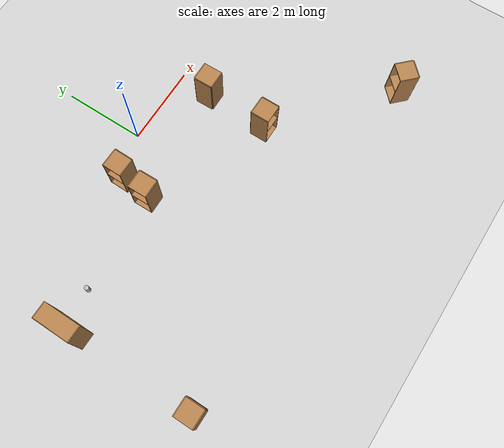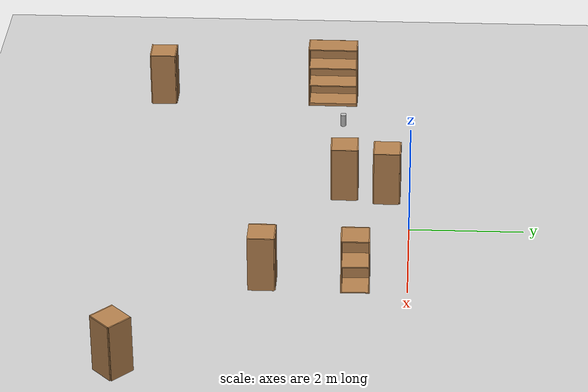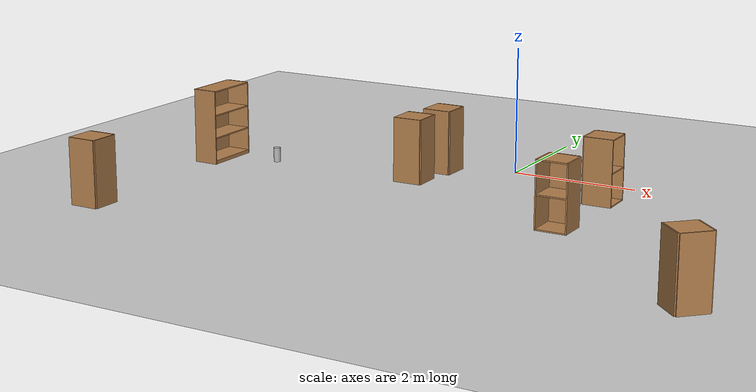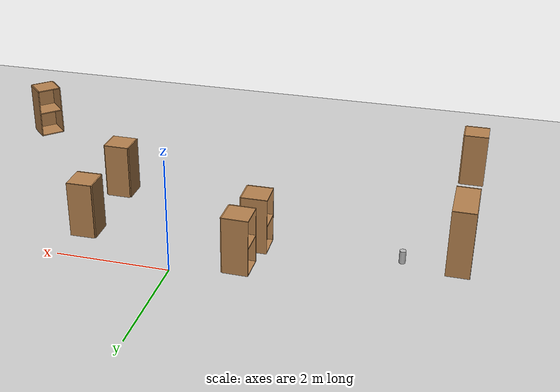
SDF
<sdf version="1.6">
 <world name="default">
  <model name="ground_plane">
   <static>1</static>
   <link name="link">
    <collision name="collision">
     <geometry><plane><normal>0 0 1</normal><size>100 100</size></plane></geometry>
     <surface><friction><ode><mu>100</mu><mu2>50</mu2></ode></friction></surface>
    </collision>
    <visual name="visual">
     <cast_shadows>0</cast_shadows>
     <geometry><plane><normal>0 0 1</normal><size>100 100</size></plane></geometry>
     <material>
      <script><uri>file://media/materials/scripts/gazebo.material</uri><name>Gazebo/Grey</name></script>
     </material>
    </visual>
   </link>
  </model>
  <model name="cabinet">
   <static>1</static>
   <link name="cabinet_bottom_plate">
    <inertial>
     <pose>0 0 -1 0 -0 0</pose>
     <inertia><ixx>2.05</ixx><ixy>0</ixy><ixz>0</ixz><iyy>2.05</iyy><iyz>0</iyz><izz>2.05</izz></inertia>
     <mass>25</mass>
    </inertial>
    <collision name="cabinet_bottom_plate_geom">
     <pose>0 0 0.01 0 -0 0</pose>
     <geometry><box><size>0.45 0.45 0.02</size></box></geometry>
    </collision>
    <visual name="cabinet_bottom_plate_geom_visual">
     <pose>0 0 0.01 0 -0 0</pose>
     <geometry><box><size>0.45 0.45 0.02</size></box></geometry>
     <material>
      <script><uri>file://media/materials/scripts/gazebo.material</uri><name>Gazebo/Wood</name></script>
     </material>
    </visual>
    <collision name="cabinet_bottom_plate_geom_cabinet_back_plate">
     <pose>0.235 0 0.51 0 -0 0</pose>
     <geometry><box><size>0.02 0.45 1.02</size></box></geometry>
    </collision>
    <visual name="cabinet_bottom_plate_geom_cabinet_back_plate_visual">
     <pose>0.235 0 0.51 0 -0 0</pose>
     <geometry><box><size>0.02 0.45 1.02</size></box></geometry>
     <material>
      <script><uri>file://media/materials/scripts/gazebo.material</uri><name>Gazebo/Wood</name></script>
     </material>
    </visual>
    <collision name="cabinet_bottom_plate_geom_cabinet_left_plate">
     <pose>0 0.235 0.51 0 -0 0</pose>
     <geometry><box><size>0.45 0.02 1.02</size></box></geometry>
    </collision>
    <visual name="cabinet_bottom_plate_geom_cabinet_left_plate_visual">
     <pose>0 0.235 0.51 0 -0 0</pose>
     <geometry><box><size>0.45 0.02 1.02</size></box></geometry>
     <material>
      <script><uri>file://media/materials/scripts/gazebo.material</uri><name>Gazebo/Wood</name></script>
     </material>
    </visual>
    <collision name="cabinet_bottom_plate_geom_cabinet_middle_plate">
     <pose>0 0 0.51 0 -0 0</pose>
     <geometry><box><size>0.45 0.45 0.02</size></box></geometry>
    </collision>
    <visual name="cabinet_bottom_plate_geom_cabinet_middle_plate_visual">
     <pose>0 0 0.51 0 -0 0</pose>
     <geometry><box><size>0.45 0.45 0.02</size></box></geometry>
     <material>
      <script><uri>file://media/materials/scripts/gazebo.material</uri><name>Gazebo/Wood</name></script>
     </material>
    </visual>
    <collision name="cabinet_bottom_plate_geom_cabinet_right_plate">
     <pose>0 -0.235 0.51 0 -0 0</pose>
     <geometry><box><size>0.45 0.02 1.02</size></box></geometry>
    </collision>
    <visual name="cabinet_bottom_plate_geom_cabinet_right_plate_visual">
     <pose>0 -0.235 0.51 0 -0 0</pose>
     <geometry><box><size>0.45 0.02 1.02</size></box></geometry>
     <material>
      <script><uri>file://media/materials/scripts/gazebo.material</uri><name>Gazebo/Wood</name></script>
     </material>
    </visual>
    <collision name="cabinet_bottom_plate_geom_cabinet_top_plate">
     <pose>0 0 1.01 0 -0 0</pose>
     <geometry><box><size>0.45 0.45 0.02</size></box></geometry>
    </collision>
    <visual name="cabinet_bottom_plate_geom_cabinet_top_plate_visual">
     <pose>0 0 1.01 0 -0 0</pose>
     <geometry><box><size>0.45 0.45 0.02</size></box></geometry>
     <material>
      <script><uri>file://media/materials/scripts/gazebo.material</uri><name>Gazebo/Wood</name></script>
     </material>
    </visual>
   </link>
   <pose>-4.59525 -4.71212 0 0 -0 0</pose>
  </model>
  <model name="bookshelf">
   <static>1</static>
   <link name="link">
    <inertial><mass>1</mass></inertial>
    <collision name="back">
     <pose>0 0.005 0.6 0 -0 0</pose>
     <geometry><box><size>0.9 0.01 1.2</size></box></geometry>
    </collision>
    <visual name="visual1">
     <pose>0 0.005 0.6 0 -0 0</pose>
     <geometry><box><size>0.9 0.01 1.2</size></box></geometry>
     <material>
      <script><uri>file://media/materials/scripts/gazebo.material</uri><name>Gazebo/Wood</name></script>
     </material>
    </visual>
    <collision name="left_side">
     <pose>0.45 -0.195 0.6 0 -0 0</pose>
     <geometry><box><size>0.02 0.4 1.2</size></box></geometry>
    </collision>
    <visual name="visual2">
     <pose>0.45 -0.195 0.6 0 -0 0</pose>
     <geometry><box><size>0.02 0.4 1.2</size></box></geometry>
     <material>
      <script><uri>file://media/materials/scripts/gazebo.material</uri><name>Gazebo/Wood</name></script>
     </material>
    </visual>
    <collision name="right_side">
     <pose>-0.45 -0.195 0.6 0 -0 0</pose>
     <geometry><box><size>0.02 0.4 1.2</size></box></geometry>
    </collision>
    <visual name="visual3">
     <pose>-0.45 -0.195 0.6 0 -0 0</pose>
     <geometry><box><size>0.02 0.4 1.2</size></box></geometry>
     <material>
      <script><uri>file://media/materials/scripts/gazebo.material</uri><name>Gazebo/Wood</name></script>
     </material>
    </visual>
    <collision name="bottom">
     <pose>0 -0.195 0.03 0 -0 0</pose>
     <geometry><box><size>0.88 0.4 0.06</size></box></geometry>
    </collision>
    <visual name="visual4">
     <pose>0 -0.195 0.03 0 -0 0</pose>
     <geometry><box><size>0.88 0.4 0.06</size></box></geometry>
     <material>
      <script><uri>file://media/materials/scripts/gazebo.material</uri><name>Gazebo/Wood</name></script>
     </material>
    </visual>
    <collision name="top">
     <pose>0 -0.195 1.19 0 -0 0</pose>
     <geometry><box><size>0.88 0.4 0.02</size></box></geometry>
    </collision>
    <visual name="visual5">
     <pose>0 -0.195 1.19 0 -0 0</pose>
     <geometry><box><size>0.88 0.4 0.02</size></box></geometry>
     <material>
      <script><uri>file://media/materials/scripts/gazebo.material</uri><name>Gazebo/Wood</name></script>
     </material>
    </visual>
    <collision name="low_shelf">
     <pose>0 -0.195 0.43 0 -0 0</pose>
     <geometry><box><size>0.88 0.4 0.02</size></box></geometry>
    </collision>
    <visual name="visual6">
     <pose>0 -0.195 0.43 0 -0 0</pose>
     <geometry><box><size>0.88 0.4 0.02</size></box></geometry>
     <material>
      <script><uri>file://media/materials/scripts/gazebo.material</uri><name>Gazebo/Wood</name></script>
     </material>
    </visual>
    <collision name="high_shelf">
     <pose>0 -0.195 0.8 0 -0 0</pose>
     <geometry><box><size>0.88 0.4 0.02</size></box></geometry>
    </collision>
    <visual name="visual7">
     <pose>0 -0.195 0.8 0 -0 0</pose>
     <geometry><box><size>0.88 0.4 0.02</size></box></geometry>
     <material>
      <script><uri>file://media/materials/scripts/gazebo.material</uri><name>Gazebo/Wood</name></script>
     </material>
    </visual>
   </link>
   <pose>-4.78302 -1.50325 0 0 -0 1.56537</pose>
  </model>
  <model name="cabinet_0_clone">
   <static>1</static>
   <link name="cabinet_bottom_plate">
    <inertial>
     <pose>0 0 -1 0 -0 0</pose>
     <inertia><ixx>2.05</ixx><ixy>0</ixy><ixz>0</ixz><iyy>2.05</iyy><iyz>0</iyz><izz>2.05</izz></inertia>
     <mass>25</mass>
    </inertial>
    <collision name="cabinet_bottom_plate_geom">
     <pose>0 0 0.01 0 -0 0</pose>
     <geometry><box><size>0.45 0.45 0.02</size></box></geometry>
    </collision>
    <visual name="cabinet_bottom_plate_geom_visual">
     <pose>0 0 0.01 0 -0 0</pose>
     <geometry><box><size>0.45 0.45 0.02</size></box></geometry>
     <material>
      <script><uri>file://media/materials/scripts/gazebo.material</uri><name>Gazebo/Wood</name></script>
     </material>
    </visual>
    <collision name="cabinet_bottom_plate_geom_cabinet_back_plate">
     <pose>0.235 0 0.51 0 -0 0</pose>
     <geometry><box><size>0.02 0.45 1.02</size></box></geometry>
    </collision>
    <visual name="cabinet_bottom_plate_geom_cabinet_back_plate_visual">
     <pose>0.235 0 0.51 0 -0 0</pose>
     <geometry><box><size>0.02 0.45 1.02</size></box></geometry>
     <material>
      <script><uri>file://media/materials/scripts/gazebo.material</uri><name>Gazebo/Wood</name></script>
     </material>
    </visual>
    <collision name="cabinet_bottom_plate_geom_cabinet_left_plate">
     <pose>0 0.235 0.51 0 -0 0</pose>
     <geometry><box><size>0.45 0.02 1.02</size></box></geometry>
    </collision>
    <visual name="cabinet_bottom_plate_geom_cabinet_left_plate_visual">
     <pose>0 0.235 0.51 0 -0 0</pose>
     <geometry><box><size>0.45 0.02 1.02</size></box></geometry>
     <material>
      <script><uri>file://media/materials/scripts/gazebo.material</uri><name>Gazebo/Wood</name></script>
     </material>
    </visual>
    <collision name="cabinet_bottom_plate_geom_cabinet_middle_plate">
     <pose>0 0 0.51 0 -0 0</pose>
     <geometry><box><size>0.45 0.45 0.02</size></box></geometry>
    </collision>
    <visual name="cabinet_bottom_plate_geom_cabinet_middle_plate_visual">
     <pose>0 0 0.51 0 -0 0</pose>
     <geometry><box><size>0.45 0.45 0.02</size></box></geometry>
     <material>
      <script><uri>file://media/materials/scripts/gazebo.material</uri><name>Gazebo/Wood</name></script>
     </material>
    </visual>
    <collision name="cabinet_bottom_plate_geom_cabinet_right_plate">
     <pose>0 -0.235 0.51 0 -0 0</pose>
     <geometry><box><size>0.45 0.02 1.02</size></box></geometry>
    </collision>
    <visual name="cabinet_bottom_plate_geom_cabinet_right_plate_visual">
     <pose>0 -0.235 0.51 0 -0 0</pose>
     <geometry><box><size>0.45 0.02 1.02</size></box></geometry>
     <material>
      <script><uri>file://media/materials/scripts/gazebo.material</uri><name>Gazebo/Wood</name></script>
     </material>
    </visual>
    <collision name="cabinet_bottom_plate_geom_cabinet_top_plate">
     <pose>0 0 1.01 0 -0 0</pose>
     <geometry><box><size>0.45 0.45 0.02</size></box></geometry>
    </collision>
    <visual name="cabinet_bottom_plate_geom_cabinet_top_plate_visual">
     <pose>0 0 1.01 0 -0 0</pose>
     <geometry><box><size>0.45 0.45 0.02</size></box></geometry>
     <material>
      <script><uri>file://media/materials/scripts/gazebo.material</uri><name>Gazebo/Wood</name></script>
     </material>
    </visual>
   </link>
   <pose>-1.19045 -1.16918 0 0 -0 0.015356</pose>
  </model>
  <model name="cabinet_0_clone_clone_2">
   <static>1</static>
   <link name="cabinet_bottom_plate">
    <inertial>
     <pose>0 0 -1 0 -0 0</pose>
     <inertia><ixx>2.05</ixx><ixy>0</ixy><ixz>0</ixz><iyy>2.05</iyy><iyz>0</iyz><izz>2.05</izz></inertia>
     <mass>25</mass>
    </inertial>
    <collision name="cabinet_bottom_plate_geom">
     <pose>0 0 0.01 0 -0 0</pose>
     <geometry><box><size>0.45 0.45 0.02</size></box></geometry>
    </collision>
    <visual name="cabinet_bottom_plate_geom_visual">
     <pose>0 0 0.01 0 -0 0</pose>
     <geometry><box><size>0.45 0.45 0.02</size></box></geometry>
     <material>
      <script><uri>file://media/materials/scripts/gazebo.material</uri><name>Gazebo/Wood</name></script>
     </material>
    </visual>
    <collision name="cabinet_bottom_plate_geom_cabinet_back_plate">
     <pose>0.235 0 0.51 0 -0 0</pose>
     <geometry><box><size>0.02 0.45 1.02</size></box></geometry>
    </collision>
    <visual name="cabinet_bottom_plate_geom_cabinet_back_plate_visual">
     <pose>0.235 0 0.51 0 -0 0</pose>
     <geometry><box><size>0.02 0.45 1.02</size></box></geometry>
     <material>
      <script><uri>file://media/materials/scripts/gazebo.material</uri><name>Gazebo/Wood</name></script>
     </material>
    </visual>
    <collision name="cabinet_bottom_plate_geom_cabinet_left_plate">
     <pose>0 0.235 0.51 0 -0 0</pose>
     <geometry><box><size>0.45 0.02 1.02</size></box></geometry>
    </collision>
    <visual name="cabinet_bottom_plate_geom_cabinet_left_plate_visual">
     <pose>0 0.235 0.51 0 -0 0</pose>
     <geometry><box><size>0.45 0.02 1.02</size></box></geometry>
     <material>
      <script><uri>file://media/materials/scripts/gazebo.material</uri><name>Gazebo/Wood</name></script>
     </material>
    </visual>
    <collision name="cabinet_bottom_plate_geom_cabinet_middle_plate">
     <pose>0 0 0.51 0 -0 0</pose>
     <geometry><box><size>0.45 0.45 0.02</size></box></geometry>
    </collision>
    <visual name="cabinet_bottom_plate_geom_cabinet_middle_plate_visual">
     <pose>0 0 0.51 0 -0 0</pose>
     <geometry><box><size>0.45 0.45 0.02</size></box></geometry>
     <material>
      <script><uri>file://media/materials/scripts/gazebo.material</uri><name>Gazebo/Wood</name></script>
     </material>
    </visual>
    <collision name="cabinet_bottom_plate_geom_cabinet_right_plate">
     <pose>0 -0.235 0.51 0 -0 0</pose>
     <geometry><box><size>0.45 0.02 1.02</size></box></geometry>
    </collision>
    <visual name="cabinet_bottom_plate_geom_cabinet_right_plate_visual">
     <pose>0 -0.235 0.51 0 -0 0</pose>
     <geometry><box><size>0.45 0.02 1.02</size></box></geometry>
     <material>
      <script><uri>file://media/materials/scripts/gazebo.material</uri><name>Gazebo/Wood</name></script>
     </material>
    </visual>
    <collision name="cabinet_bottom_plate_geom_cabinet_top_plate">
     <pose>0 0 1.01 0 -0 0</pose>
     <geometry><box><size>0.45 0.45 0.02</size></box></geometry>
    </collision>
    <visual name="cabinet_bottom_plate_geom_cabinet_top_plate_visual">
     <pose>0 0 1.01 0 -0 0</pose>
     <geometry><box><size>0.45 0.45 0.02</size></box></geometry>
     <material>
      <script><uri>file://media/materials/scripts/gazebo.material</uri><name>Gazebo/Wood</name></script>
     </material>
    </visual>
   </link>
   <pose>-1.08054 -0.412522 0 0 0 -0.011045</pose>
  </model>
  <model name="cabinet_0_clone_clone_10">
   <static>1</static>
   <link name="cabinet_bottom_plate">
    <inertial>
     <pose>0 0 -1 0 -0 0</pose>
     <inertia><ixx>2.05</ixx><ixy>0</ixy><ixz>0</ixz><iyy>2.05</iyy><iyz>0</iyz><izz>2.05</izz></inertia>
     <mass>25</mass>
    </inertial>
    <collision name="cabinet_bottom_plate_geom">
     <pose>0 0 0.01 0 -0 0</pose>
     <geometry><box><size>0.45 0.45 0.02</size></box></geometry>
    </collision>
    <visual name="cabinet_bottom_plate_geom_visual">
     <pose>0 0 0.01 0 -0 0</pose>
     <geometry><box><size>0.45 0.45 0.02</size></box></geometry>
     <material>
      <script><uri>file://media/materials/scripts/gazebo.material</uri><name>Gazebo/Wood</name></script>
     </material>
    </visual>
    <collision name="cabinet_bottom_plate_geom_cabinet_back_plate">
     <pose>0.235 0 0.51 0 -0 0</pose>
     <geometry><box><size>0.02 0.45 1.02</size></box></geometry>
    </collision>
    <visual name="cabinet_bottom_plate_geom_cabinet_back_plate_visual">
     <pose>0.235 0 0.51 0 -0 0</pose>
     <geometry><box><size>0.02 0.45 1.02</size></box></geometry>
     <material>
      <script><uri>file://media/materials/scripts/gazebo.material</uri><name>Gazebo/Wood</name></script>
     </material>
    </visual>
    <collision name="cabinet_bottom_plate_geom_cabinet_left_plate">
     <pose>0 0.235 0.51 0 -0 0</pose>
     <geometry><box><size>0.45 0.02 1.02</size></box></geometry>
    </collision>
    <visual name="cabinet_bottom_plate_geom_cabinet_left_plate_visual">
     <pose>0 0.235 0.51 0 -0 0</pose>
     <geometry><box><size>0.45 0.02 1.02</size></box></geometry>
     <material>
      <script><uri>file://media/materials/scripts/gazebo.material</uri><name>Gazebo/Wood</name></script>
     </material>
    </visual>
    <collision name="cabinet_bottom_plate_geom_cabinet_middle_plate">
     <pose>0 0 0.51 0 -0 0</pose>
     <geometry><box><size>0.45 0.45 0.02</size></box></geometry>
    </collision>
    <visual name="cabinet_bottom_plate_geom_cabinet_middle_plate_visual">
     <pose>0 0 0.51 0 -0 0</pose>
     <geometry><box><size>0.45 0.45 0.02</size></box></geometry>
     <material>
      <script><uri>file://media/materials/scripts/gazebo.material</uri><name>Gazebo/Wood</name></script>
     </material>
    </visual>
    <collision name="cabinet_bottom_plate_geom_cabinet_right_plate">
     <pose>0 -0.235 0.51 0 -0 0</pose>
     <geometry><box><size>0.45 0.02 1.02</size></box></geometry>
    </collision>
    <visual name="cabinet_bottom_plate_geom_cabinet_right_plate_visual">
     <pose>0 -0.235 0.51 0 -0 0</pose>
     <geometry><box><size>0.45 0.02 1.02</size></box></geometry>
     <material>
      <script><uri>file://media/materials/scripts/gazebo.material</uri><name>Gazebo/Wood</name></script>
     </material>
    </visual>
    <collision name="cabinet_bottom_plate_geom_cabinet_top_plate">
     <pose>0 0 1.01 0 -0 0</pose>
     <geometry><box><size>0.45 0.45 0.02</size></box></geometry>
    </collision>
    <visual name="cabinet_bottom_plate_geom_cabinet_top_plate_visual">
     <pose>0 0 1.01 0 -0 0</pose>
     <geometry><box><size>0.45 0.45 0.02</size></box></geometry>
     <material>
      <script><uri>file://media/materials/scripts/gazebo.material</uri><name>Gazebo/Wood</name></script>
     </material>
    </visual>
   </link>
   <pose>1.82763 -0.880699 0 0 0 -3.12805</pose>
  </model>
  <model name="cabinet_0_clone_clone_11">
   <static>1</static>
   <link name="cabinet_bottom_plate">
    <inertial>
     <pose>0 0 -1 0 -0 0</pose>
     <inertia><ixx>2.05</ixx><ixy>0</ixy><ixz>0</ixz><iyy>2.05</iyy><iyz>0</iyz><izz>2.05</izz></inertia>
     <mass>25</mass>
    </inertial>
    <collision name="cabinet_bottom_plate_geom">
     <pose>0 0 0.01 0 -0 0</pose>
     <geometry><box><size>0.45 0.45 0.02</size></box></geometry>
    </collision>
    <visual name="cabinet_bottom_plate_geom_visual">
     <pose>0 0 0.01 0 -0 0</pose>
     <geometry><box><size>0.45 0.45 0.02</size></box></geometry>
     <material>
      <script><uri>file://media/materials/scripts/gazebo.material</uri><name>Gazebo/Wood</name></script>
     </material>
    </visual>
    <collision name="cabinet_bottom_plate_geom_cabinet_back_plate">
     <pose>0.235 0 0.51 0 -0 0</pose>
     <geometry><box><size>0.02 0.45 1.02</size></box></geometry>
    </collision>
    <visual name="cabinet_bottom_plate_geom_cabinet_back_plate_visual">
     <pose>0.235 0 0.51 0 -0 0</pose>
     <geometry><box><size>0.02 0.45 1.02</size></box></geometry>
     <material>
      <script><uri>file://media/materials/scripts/gazebo.material</uri><name>Gazebo/Wood</name></script>
     </material>
    </visual>
    <collision name="cabinet_bottom_plate_geom_cabinet_left_plate">
     <pose>0 0.235 0.51 0 -0 0</pose>
     <geometry><box><size>0.45 0.02 1.02</size></box></geometry>
    </collision>
    <visual name="cabinet_bottom_plate_geom_cabinet_left_plate_visual">
     <pose>0 0.235 0.51 0 -0 0</pose>
     <geometry><box><size>0.45 0.02 1.02</size></box></geometry>
     <material>
      <script><uri>file://media/materials/scripts/gazebo.material</uri><name>Gazebo/Wood</name></script>
     </material>
    </visual>
    <collision name="cabinet_bottom_plate_geom_cabinet_middle_plate">
     <pose>0 0 0.51 0 -0 0</pose>
     <geometry><box><size>0.45 0.45 0.02</size></box></geometry>
    </collision>
    <visual name="cabinet_bottom_plate_geom_cabinet_middle_plate_visual">
     <pose>0 0 0.51 0 -0 0</pose>
     <geometry><box><size>0.45 0.45 0.02</size></box></geometry>
     <material>
      <script><uri>file://media/materials/scripts/gazebo.material</uri><name>Gazebo/Wood</name></script>
     </material>
    </visual>
    <collision name="cabinet_bottom_plate_geom_cabinet_right_plate">
     <pose>0 -0.235 0.51 0 -0 0</pose>
     <geometry><box><size>0.45 0.02 1.02</size></box></geometry>
    </collision>
    <visual name="cabinet_bottom_plate_geom_cabinet_right_plate_visual">
     <pose>0 -0.235 0.51 0 -0 0</pose>
     <geometry><box><size>0.45 0.02 1.02</size></box></geometry>
     <material>
      <script><uri>file://media/materials/scripts/gazebo.material</uri><name>Gazebo/Wood</name></script>
     </material>
    </visual>
    <collision name="cabinet_bottom_plate_geom_cabinet_top_plate">
     <pose>0 0 1.01 0 -0 0</pose>
     <geometry><box><size>0.45 0.45 0.02</size></box></geometry>
    </collision>
    <visual name="cabinet_bottom_plate_geom_cabinet_top_plate_visual">
     <pose>0 0 1.01 0 -0 0</pose>
     <geometry><box><size>0.45 0.45 0.02</size></box></geometry>
     <material>
      <script><uri>file://media/materials/scripts/gazebo.material</uri><name>Gazebo/Wood</name></script>
     </material>
    </visual>
   </link>
   <pose>1.79366 -2.46179 0 0 -0 1.568</pose>
  </model>
  <model name="cabinet_0_clone_clone_12">
   <static>1</static>
   <link name="cabinet_bottom_plate">
    <inertial>
     <pose>0 0 -1 0 -0 0</pose>
     <inertia><ixx>2.05</ixx><ixy>0</ixy><ixz>0</ixz><iyy>2.05</iyy><iyz>0</iyz><izz>2.05</izz></inertia>
     <mass>25</mass>
    </inertial>
    <collision name="cabinet_bottom_plate_geom">
     <pose>0 0 0.01 0 -0 0</pose>
     <geometry><box><size>0.45 0.45 0.02</size></box></geometry>
    </collision>
    <visual name="cabinet_bottom_plate_geom_visual">
     <pose>0 0 0.01 0 -0 0</pose>
     <geometry><box><size>0.45 0.45 0.02</size></box></geometry>
     <material>
      <script><uri>file://media/materials/scripts/gazebo.material</uri><name>Gazebo/Wood</name></script>
     </material>
    </visual>
    <collision name="cabinet_bottom_plate_geom_cabinet_back_plate">
     <pose>0.235 0 0.51 0 -0 0</pose>
     <geometry><box><size>0.02 0.45 1.02</size></box></geometry>
    </collision>
    <visual name="cabinet_bottom_plate_geom_cabinet_back_plate_visual">
     <pose>0.235 0 0.51 0 -0 0</pose>
     <geometry><box><size>0.02 0.45 1.02</size></box></geometry>
     <material>
      <script><uri>file://media/materials/scripts/gazebo.material</uri><name>Gazebo/Wood</name></script>
     </material>
    </visual>
    <collision name="cabinet_bottom_plate_geom_cabinet_left_plate">
     <pose>0 0.235 0.51 0 -0 0</pose>
     <geometry><box><size>0.45 0.02 1.02</size></box></geometry>
    </collision>
    <visual name="cabinet_bottom_plate_geom_cabinet_left_plate_visual">
     <pose>0 0.235 0.51 0 -0 0</pose>
     <geometry><box><size>0.45 0.02 1.02</size></box></geometry>
     <material>
      <script><uri>file://media/materials/scripts/gazebo.material</uri><name>Gazebo/Wood</name></script>
     </material>
    </visual>
    <collision name="cabinet_bottom_plate_geom_cabinet_middle_plate">
     <pose>0 0 0.51 0 -0 0</pose>
     <geometry><box><size>0.45 0.45 0.02</size></box></geometry>
    </collision>
    <visual name="cabinet_bottom_plate_geom_cabinet_middle_plate_visual">
     <pose>0 0 0.51 0 -0 0</pose>
     <geometry><box><size>0.45 0.45 0.02</size></box></geometry>
     <material>
      <script><uri>file://media/materials/scripts/gazebo.material</uri><name>Gazebo/Wood</name></script>
     </material>
    </visual>
    <collision name="cabinet_bottom_plate_geom_cabinet_right_plate">
     <pose>0 -0.235 0.51 0 -0 0</pose>
     <geometry><box><size>0.45 0.02 1.02</size></box></geometry>
    </collision>
    <visual name="cabinet_bottom_plate_geom_cabinet_right_plate_visual">
     <pose>0 -0.235 0.51 0 -0 0</pose>
     <geometry><box><size>0.45 0.02 1.02</size></box></geometry>
     <material>
      <script><uri>file://media/materials/scripts/gazebo.material</uri><name>Gazebo/Wood</name></script>
     </material>
    </visual>
    <collision name="cabinet_bottom_plate_geom_cabinet_top_plate">
     <pose>0 0 1.01 0 -0 0</pose>
     <geometry><box><size>0.45 0.45 0.02</size></box></geometry>
    </collision>
    <visual name="cabinet_bottom_plate_geom_cabinet_top_plate_visual">
     <pose>0 0 1.01 0 -0 0</pose>
     <geometry><box><size>0.45 0.45 0.02</size></box></geometry>
     <material>
      <script><uri>file://media/materials/scripts/gazebo.material</uri><name>Gazebo/Wood</name></script>
     </material>
    </visual>
   </link>
   <pose>4.42577 -4.68467 0 0 0 -0.785028</pose>
  </model>
  <model name="beer">
   <link name="link">
    <pose>0 0 0.115 0 -0 0</pose>
    <inertial>
     <mass>0.39</mass>
     <inertia><ixx>0.00058</ixx><ixy>0</ixy><ixz>0</ixz><iyy>0.00058</iyy><iyz>0</iyz><izz>0.00019</izz></inertia>
    </inertial>
    <collision name="collision">
     <geometry><cylinder><radius>0.055</radius><length>0.23</length></cylinder></geometry>
    </collision>
    <visual name="visual">
     <geometry><cylinder><radius>0.055</radius><length>0.23</length></cylinder></geometry>
     <material>
      <script>
       <uri>model://beer/materials/scripts</uri>
       <uri>model://beer/materials/textures</uri>
       <name>Beer/Diffuse</name>
      </script>
     </material>
    </visual>
   </link>
   <pose>-3.66436 -1.28153 -7e-06 -1e-06 -0 -2e-06</pose>
  </model>
 </world>
</sdf>
